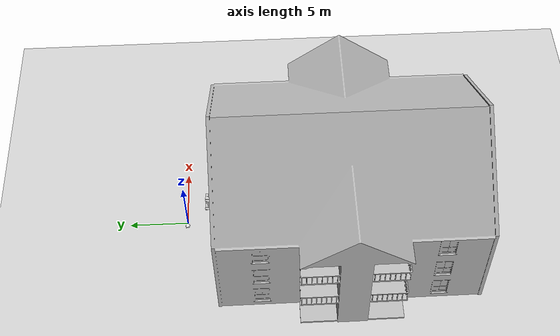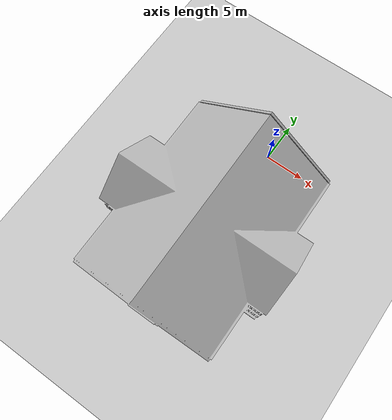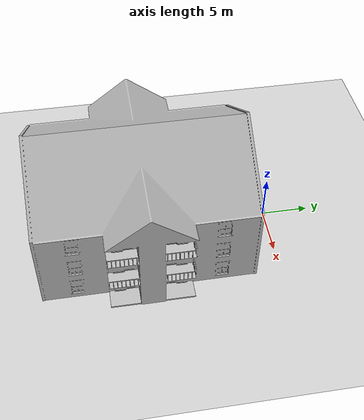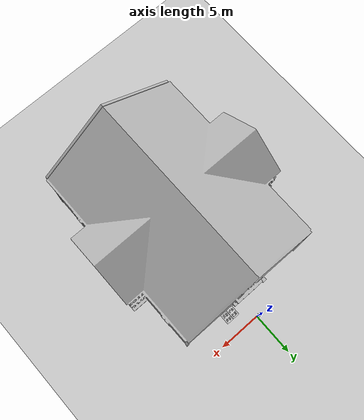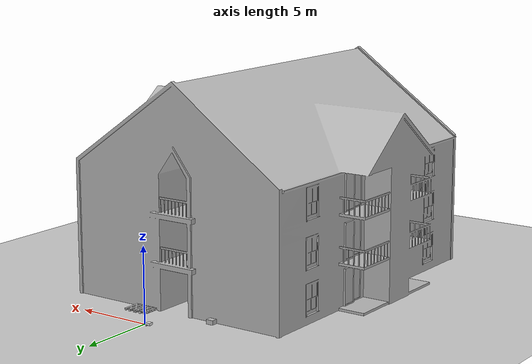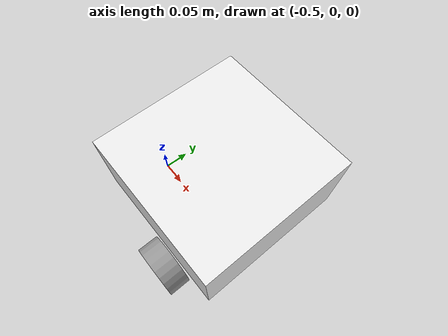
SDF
<sdf version="1.7">
 <world name="default">
  <light name="sun" type="directional">
   <pose>0 0 10 0 -0 0</pose>
   <diffuse>0.8 0.8 0.8 1</diffuse>
   <specular>0.2 0.2 0.2 1</specular>
   <attenuation>
    <range>1000</range>
    <constant>0.9</constant>
    <linear>0.01</linear>
    <quadratic>0.001</quadratic>
   </attenuation>
   <direction>-0.5 0.1 -0.9</direction>
   <spot><inner_angle>0</inner_angle><outer_angle>0</outer_angle><falloff>0</falloff></spot>
  </light>
  <model name="ground_plane">
   <static>1</static>
   <link name="link">
    <collision name="collision">
     <geometry><plane><normal>0 0 1</normal><size>100 100</size></plane></geometry>
     <surface>
      <contact><collide_bitmask>65535</collide_bitmask></contact>
      <friction><ode><mu>100</mu><mu2>50</mu2></ode></friction>
     </surface>
    </collision>
    <visual name="visual">
     <cast_shadows>0</cast_shadows>
     <geometry><plane><normal>0 0 1</normal><size>100 100</size></plane></geometry>
     <material>
      <script><uri>file://media/materials/scripts/gazebo.material</uri><name>Gazebo/Grey</name></script>
     </material>
    </visual>
   </link>
  </model>
  <gravity>0 0 -9.8</gravity>
  <magnetic_field>6e-06 2.3e-05 -4.2e-05</magnetic_field>
  <atmosphere type="adiabatic"/>
  <physics type="ode">
   <max_step_size>0.001</max_step_size>
   <real_time_factor>1</real_time_factor>
   <real_time_update_rate>1000</real_time_update_rate>
  </physics>
  <scene><ambient>0.4 0.4 0.4 1</ambient><background>0.7 0.7 0.7 1</background><shadows>1</shadows></scene>
  <audio><device>default</device></audio>
  <spherical_coordinates>
   <surface_model>EARTH_WGS84</surface_model>
   <latitude_deg>0</latitude_deg>
   <longitude_deg>0</longitude_deg>
   <elevation>0</elevation>
   <heading_deg>0</heading_deg>
  </spherical_coordinates>
  <model name="my_bot">
   <link name="base_link">
    <inertial>
     <pose>0.065 0 0.0625 0 -0 0</pose>
     <mass>0.6</mass>
     <inertia>
      <ixx>0.00525625</ixx>
      <ixy>0</ixy>
      <ixz>0.0005625</ixz>
      <iyy>0.00593125</iyy>
      <iyz>0</iyz>
      <izz>0.008275</izz>
     </inertia>
    </inertial>
    <collision name="base_link_fixed_joint_lump__chassis_collision">
     <pose>0.05 0 0.075 0 -0 0</pose>
     <geometry><box><size>0.3 0.3 0.15</size></box></geometry>
    </collision>
    <collision name="base_link_fixed_joint_lump__caster_wheel_collision_1">
     <pose>0.14 0 0 0 -0 0</pose>
     <geometry><sphere><radius>0.05</radius></sphere></geometry>
     <surface><friction><ode><mu>1e-05</mu><mu2>1e-05</mu2></ode></friction></surface>
    </collision>
    <visual name="base_link_fixed_joint_lump__chassis_visual">
     <pose>0.05 0 0.075 0 -0 0</pose>
     <geometry><box><size>0.3 0.3 0.15</size></box></geometry>
     <material>
      <script><name>Gazebo/White</name><uri>file://media/materials/scripts/gazebo.material</uri></script>
     </material>
    </visual>
    <visual name="base_link_fixed_joint_lump__caster_wheel_visual_1">
     <pose>0.14 0 0 0 -0 0</pose>
     <geometry><sphere><radius>0.05</radius></sphere></geometry>
     <material>
      <script><name>Gazebo/Black</name><uri>file://media/materials/scripts/gazebo.material</uri></script>
     </material>
    </visual>
   </link>
   <joint name="left_wheel_joint" type="revolute">
    <pose relative_to="base_link">0 0.175 0 -1.5708 0 0</pose>
    <parent>base_link</parent>
    <child>left_wheel</child>
    <axis>
     <xyz>0 0 1</xyz>
     <limit><lower>-1e+16</lower><upper>1e+16</upper></limit>
     <dynamics><spring_reference>0</spring_reference><spring_stiffness>0</spring_stiffness></dynamics>
    </axis>
   </joint>
   <link name="left_wheel">
    <pose relative_to="left_wheel_joint">0 0 0 0 -0 0</pose>
    <inertial>
     <mass>0.1</mass>
     <inertia>
      <ixx>7.58333e-05</ixx>
      <ixy>0</ixy>
      <ixz>0</ixz>
      <iyy>7.58333e-05</iyy>
      <iyz>0</iyz>
      <izz>0.000125</izz>
     </inertia>
    </inertial>
    <collision name="left_wheel_collision">
     <geometry><cylinder><length>0.04</length><radius>0.05</radius></cylinder></geometry>
    </collision>
    <visual name="left_wheel_visual">
     <geometry><cylinder><length>0.04</length><radius>0.05</radius></cylinder></geometry>
     <material>
      <script><name>Gazebo/Gray</name><uri>file://media/materials/scripts/gazebo.material</uri></script>
     </material>
    </visual>
   </link>
   <joint name="right_wheel_joint" type="revolute">
    <pose relative_to="base_link">0 -0.175 0 1.5708 -0 0</pose>
    <parent>base_link</parent>
    <child>right_wheel</child>
    <axis>
     <xyz>0 0 -1</xyz>
     <limit><lower>-1e+16</lower><upper>1e+16</upper></limit>
     <dynamics><spring_reference>0</spring_reference><spring_stiffness>0</spring_stiffness></dynamics>
    </axis>
   </joint>
   <link name="right_wheel">
    <pose relative_to="right_wheel_joint">0 0 0 0 -0 0</pose>
    <inertial>
     <mass>0.1</mass>
     <inertia>
      <ixx>7.58333e-05</ixx>
      <ixy>0</ixy>
      <ixz>0</ixz>
      <iyy>7.58333e-05</iyy>
      <iyz>0</iyz>
      <izz>0.000125</izz>
     </inertia>
    </inertial>
    <collision name="right_wheel_collision">
     <geometry><cylinder><length>0.04</length><radius>0.05</radius></cylinder></geometry>
    </collision>
    <visual name="right_wheel_visual">
     <geometry><cylinder><length>0.04</length><radius>0.05</radius></cylinder></geometry>
     <material>
      <script><name>Gazebo/Gray</name><uri>file://media/materials/scripts/gazebo.material</uri></script>
     </material>
    </visual>
   </link>
   <static>0</static>
   <plugin name="differential_drive" filename="libgazebo_ros_diff_drive.so">
    <left_joint>left_wheel_joint</left_joint>
    <right_joint>right_wheel_joint</right_joint>
    <wheel_separation>0.35</wheel_separation>
    <wheel_diameter>0.1</wheel_diameter>
    <max_wheel_torque>200</max_wheel_torque>
    <max_wheel_acceleration>10.0</max_wheel_acceleration>
    <odometry_frame>odom</odometry_frame>
    <robot_base_frame>base_link</robot_base_frame>
    <publish_odom>1</publish_odom>
    <publish_odom_tf>1</publish_odom_tf>
    <publish_wheel_tf>1</publish_wheel_tf>
   </plugin>
   <pose>-0.312672 0.040946 0.05 0 1.5e-05 -3.1286</pose>
  </model>
  <model name="apartment">
   <static>1</static>
   <link name="link">
    <collision name="collision">
     <geometry><mesh><uri>model://apartment/meshes/apartment.dae</uri></mesh></geometry>
    </collision>
    <visual name="visual">
     <geometry><mesh><uri>model://apartment/meshes/apartment.dae</uri></mesh></geometry>
    </visual>
   </link>
   <pose>-0.212928 -13.4434 0 0 -0 0</pose>
  </model>
  <model name="euro_pallet">
   <link name="link">
    <inertial>
     <mass>20</mass>
     <inertia><ixx>2.43</ixx><ixy>0</ixy><ixz>0</ixz><iyy>1.1</iyy><iyz>0</iyz><izz>3.47</izz></inertia>
    </inertial>
    <collision name="collision">
     <pose>0 0 0.05 0 -0 0</pose>
     <geometry><mesh><uri>model://euro_pallet/meshes/pallet.dae</uri><scale>0.1 0.1 0.1</scale></mesh></geometry>
    </collision>
    <visual name="visual">
     <pose>0 0 0.05 0 -0 0</pose>
     <geometry><mesh><uri>model://euro_pallet/meshes/pallet.dae</uri><scale>0.1 0.1 0.1</scale></mesh></geometry>
    </visual>
   </link>
   <pose>1.6903 -2.07715 0.071997 0 -1e-05 -0.013016</pose>
  </model>
  <model name="euro_pallet_0">
   <link name="link">
    <inertial>
     <mass>20</mass>
     <inertia><ixx>2.43</ixx><ixy>0</ixy><ixz>0</ixz><iyy>1.1</iyy><iyz>0</iyz><izz>3.47</izz></inertia>
    </inertial>
    <collision name="collision">
     <pose>0 0 0.05 0 -0 0</pose>
     <geometry><mesh><uri>model://euro_pallet/meshes/pallet.dae</uri><scale>0.1 0.1 0.1</scale></mesh></geometry>
    </collision>
    <visual name="visual">
     <pose>0 0 0.05 0 -0 0</pose>
     <geometry><mesh><uri>model://euro_pallet/meshes/pallet.dae</uri><scale>0.1 0.1 0.1</scale></mesh></geometry>
    </visual>
   </link>
   <pose>2.53625 -2.07203 0.071999 0 -4e-06 -0.013016</pose>
  </model>
  <model name="cardboard_box">
   <pose>-3.27239 -2.45065 0.14951 2e-06 -2e-06 -0</pose>
   <link name="link">
    <inertial>
     <mass>2</mass>
     <inertia>
      <ixx>0.0416667</ixx>
      <ixy>0</ixy>
      <ixz>0</ixz>
      <iyy>0.0566667</iyy>
      <iyz>0</iyz>
      <izz>0.0683333</izz>
     </inertia>
    </inertial>
    <collision name="collision">
     <geometry><box><size>0.5 0.4 0.3</size></box></geometry>
     <surface>
      <friction><ode><mu>1</mu><mu2>1</mu2></ode></friction>
      <contact><ode><kp>1e+07</kp><kd>1</kd><min_depth>0.001</min_depth><max_vel>0.1</max_vel></ode></contact>
     </surface>
    </collision>
    <visual name="visual">
     <pose>0 0 -0.15 0 -0 0</pose>
     <geometry>
      <mesh><uri>model://cardboard_box/meshes/cardboard_box.dae</uri><scale>1.25932 1.00745 0.755591</scale></mesh>
     </geometry>
    </visual>
   </link>
  </model>
 </world>
</sdf>
